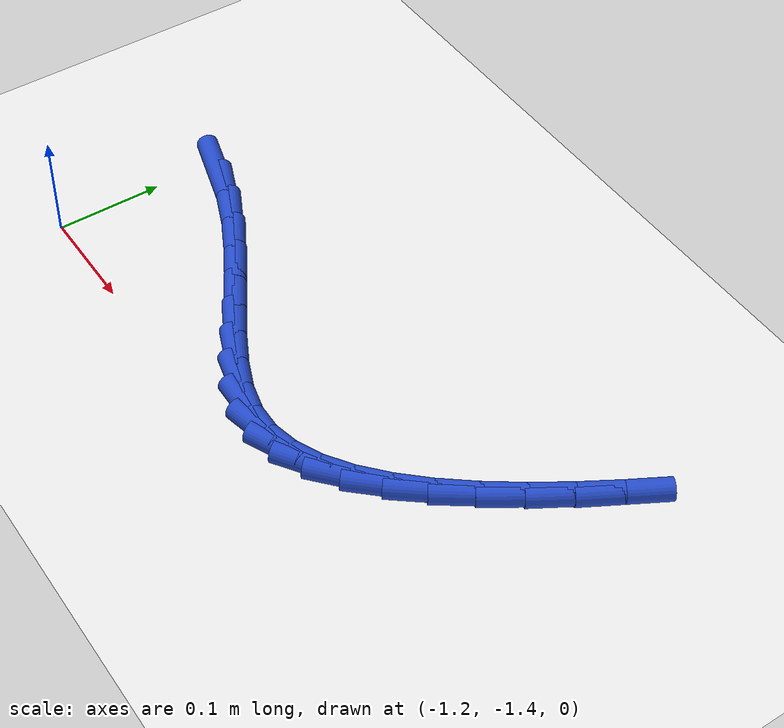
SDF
<sdf version="1.6">
 <world name="default">
  <model name="ground_plane">
   <static>1</static>
   <link name="link">
    <collision name="collision">
     <geometry><plane><normal>0 0 1</normal><size>100 100</size></plane></geometry>
     <surface><friction><ode><mu>100</mu><mu2>50</mu2></ode></friction></surface>
    </collision>
    <visual name="visual">
     <cast_shadows>0</cast_shadows>
     <geometry><plane><normal>0 0 1</normal><size>100 100</size></plane></geometry>
     <material>
      <script><uri>file://media/materials/scripts/gazebo.material</uri><name>Gazebo/WhiteGlow</name></script>
     </material>
    </visual>
   </link>
  </model>
  <model name="line">
   <link name="link_179">
    <pose>-1.1791638434591296 -1.2466586511138409 0.01 0 1.57 -0.28677213311311417</pose>
    <collision name="collision">
     <geometry><cylinder><radius>0.01</radius><length>0.08</length></cylinder></geometry>
    </collision>
    <visual name="visual">
     <material>
      <script><name>Gazebo/Blue</name><uri>file://media/materials/scripts/gazebo.material</uri></script>
     </material>
     <geometry><cylinder><radius>0.01</radius><length>0.08</length></cylinder></geometry>
    </visual>
   </link>
   <link name="link_180">
    <pose>-1.1440116622862213 -1.2570250591560603 0.01 0 1.57 -0.39635215390813605</pose>
    <collision name="collision">
     <geometry><cylinder><radius>0.01</radius><length>0.08</length></cylinder></geometry>
    </collision>
    <visual name="visual">
     <material>
      <script><name>Gazebo/Blue</name><uri>file://media/materials/scripts/gazebo.material</uri></script>
     </material>
     <geometry><cylinder><radius>0.01</radius><length>0.08</length></cylinder></geometry>
    </visual>
   </link>
   <link name="link_181">
    <pose>-1.1104053235081752 -1.2710893088309307 0.01 0 1.57 -0.4753566311824164</pose>
    <collision name="collision">
     <geometry><cylinder><radius>0.01</radius><length>0.08</length></cylinder></geometry>
    </collision>
    <visual name="visual">
     <material>
      <script><name>Gazebo/Blue</name><uri>file://media/materials/scripts/gazebo.material</uri></script>
     </material>
     <geometry><cylinder><radius>0.01</radius><length>0.08</length></cylinder></geometry>
    </visual>
   </link>
   <link name="link_182">
    <pose>-1.078220488179157 -1.2876555885705723 0.01 0 1.57 -0.5245571993979186</pose>
    <collision name="collision">
     <geometry><cylinder><radius>0.01</radius><length>0.08</length></cylinder></geometry>
    </collision>
    <visual name="visual">
     <material>
      <script><name>Gazebo/Blue</name><uri>file://media/materials/scripts/gazebo.material</uri></script>
     </material>
     <geometry><cylinder><radius>0.01</radius><length>0.08</length></cylinder></geometry>
    </visual>
   </link>
   <link name="link_183">
    <pose>-1.0473328173533318 -1.3055280868071053 0.01 0 1.57 -0.544221471075791</pose>
    <collision name="collision">
     <geometry><cylinder><radius>0.01</radius><length>0.08</length></cylinder></geometry>
    </collision>
    <visual name="visual">
     <material>
      <script><name>Gazebo/Blue</name><uri>file://media/materials/scripts/gazebo.material</uri></script>
     </material>
     <geometry><cylinder><radius>0.01</radius><length>0.08</length></cylinder></geometry>
    </visual>
   </link>
   <link name="link_184">
    <pose>-1.0176179720848646 -1.3235109919726504 0.01 0 1.57 -0.5326290183701429</pose>
    <collision name="collision">
     <geometry><cylinder><radius>0.01</radius><length>0.08</length></cylinder></geometry>
    </collision>
    <visual name="visual">
     <material>
      <script><name>Gazebo/Blue</name><uri>file://media/materials/scripts/gazebo.material</uri></script>
     </material>
     <geometry><cylinder><radius>0.01</radius><length>0.08</length></cylinder></geometry>
    </visual>
   </link>
   <link name="link_185">
    <pose>-0.9889516134279193 -1.3404084924993271 0.01 0 1.57 -0.48490464394390115</pose>
    <collision name="collision">
     <geometry><cylinder><radius>0.01</radius><length>0.08</length></cylinder></geometry>
    </collision>
    <visual name="visual">
     <material>
      <script><name>Gazebo/Blue</name><uri>file://media/materials/scripts/gazebo.material</uri></script>
     </material>
     <geometry><cylinder><radius>0.01</radius><length>0.08</length></cylinder></geometry>
    </visual>
   </link>
   <link name="link_186">
    <pose>-0.9612094024366633 -1.3550247768192554 0.01 0 1.57 -0.3920446390622317</pose>
    <collision name="collision">
     <geometry><cylinder><radius>0.01</radius><length>0.08</length></cylinder></geometry>
    </collision>
    <visual name="visual">
     <material>
      <script><name>Gazebo/Blue</name><uri>file://media/materials/scripts/gazebo.material</uri></script>
     </material>
     <geometry><cylinder><radius>0.01</radius><length>0.08</length></cylinder></geometry>
    </visual>
   </link>
   <link name="link_187">
    <pose>-0.9342670001652611 -1.3661640333645562 0.01 0 1.57 -0.24138100299221762</pose>
    <collision name="collision">
     <geometry><cylinder><radius>0.01</radius><length>0.08</length></cylinder></geometry>
    </collision>
    <visual name="visual">
     <material>
      <script><name>Gazebo/Blue</name><uri>file://media/materials/scripts/gazebo.material</uri></script>
     </material>
     <geometry><cylinder><radius>0.01</radius><length>0.08</length></cylinder></geometry>
    </visual>
   </link>
   <link name="link_188">
    <pose>-0.908000067667877 -1.3726304505673488 0.01 0 1.57 -0.0240213212134603</pose>
    <collision name="collision">
     <geometry><cylinder><radius>0.01</radius><length>0.08</length></cylinder></geometry>
    </collision>
    <visual name="visual">
     <material>
      <script><name>Gazebo/Blue</name><uri>file://media/materials/scripts/gazebo.material</uri></script>
     </material>
     <geometry><cylinder><radius>0.01</radius><length>0.08</length></cylinder></geometry>
    </visual>
   </link>
   <link name="link_189">
    <pose>-0.8822860600096872 -1.3732482538386417 0.01 0 1.57 0.2202931830912271</pose>
    <collision name="collision">
     <geometry><cylinder><radius>0.01</radius><length>0.08</length></cylinder></geometry>
    </collision>
    <visual name="visual">
     <material>
      <script><name>Gazebo/Blue</name><uri>file://media/materials/scripts/gazebo.material</uri></script>
     </material>
     <geometry><cylinder><radius>0.01</radius><length>0.08</length></cylinder></geometry>
    </visual>
   </link>
   <link name="link_190">
    <pose>-0.8570704906103008 -1.367601799827863 0.01 0 1.57 0.4309696509322049</pose>
    <collision name="collision">
     <geometry><cylinder><radius>0.01</radius><length>0.08</length></cylinder></geometry>
    </collision>
    <visual name="visual">
     <material>
      <script><name>Gazebo/Blue</name><uri>file://media/materials/scripts/gazebo.material</uri></script>
     </material>
     <geometry><cylinder><radius>0.01</radius><length>0.08</length></cylinder></geometry>
    </visual>
   </link>
   <link name="link_191">
    <pose>-0.8323863211304374 -1.3562521384995565 0.01 0 1.57 0.5980284092635182</pose>
    <collision name="collision">
     <geometry><cylinder><radius>0.01</radius><length>0.08</length></cylinder></geometry>
    </collision>
    <visual name="visual">
     <material>
      <script><name>Gazebo/Blue</name><uri>file://media/materials/scripts/gazebo.material</uri></script>
     </material>
     <geometry><cylinder><radius>0.01</radius><length>0.08</length></cylinder></geometry>
    </visual>
   </link>
   <link name="link_192">
    <pose>-0.8082722617729744 -1.3398245242279332 0.01 0 1.57 0.726327760804237</pose>
    <collision name="collision">
     <geometry><cylinder><radius>0.01</radius><length>0.08</length></cylinder></geometry>
    </collision>
    <visual name="visual">
     <material>
      <script><name>Gazebo/Blue</name><uri>file://media/materials/scripts/gazebo.material</uri></script>
     </material>
     <geometry><cylinder><radius>0.01</radius><length>0.08</length></cylinder></geometry>
    </visual>
   </link>
   <link name="link_193">
    <pose>-0.7847670227407902 -1.3189442113872036 0.01 0 1.57 0.8242733522779825</pose>
    <collision name="collision">
     <geometry><cylinder><radius>0.01</radius><length>0.08</length></cylinder></geometry>
    </collision>
    <visual name="visual">
     <material>
      <script><name>Gazebo/Blue</name><uri>file://media/materials/scripts/gazebo.material</uri></script>
     </material>
     <geometry><cylinder><radius>0.01</radius><length>0.08</length></cylinder></geometry>
    </visual>
   </link>
   <link name="link_194">
    <pose>-0.7619093142367621 -1.2942364543515787 0.01 0 1.57 0.8994836204667089</pose>
    <collision name="collision">
     <geometry><cylinder><radius>0.01</radius><length>0.08</length></cylinder></geometry>
    </collision>
    <visual name="visual">
     <material>
      <script><name>Gazebo/Blue</name><uri>file://media/materials/scripts/gazebo.material</uri></script>
     </material>
     <geometry><cylinder><radius>0.01</radius><length>0.08</length></cylinder></geometry>
    </visual>
   </link>
   <link name="link_195">
    <pose>-0.7397378464637675 -1.2663265074952692 0.01 0 1.57 0.9577472782646543</pose>
    <collision name="collision">
     <geometry><cylinder><radius>0.01</radius><length>0.08</length></cylinder></geometry>
    </collision>
    <visual name="visual">
     <material>
      <script><name>Gazebo/Blue</name><uri>file://media/materials/scripts/gazebo.material</uri></script>
     </material>
     <geometry><cylinder><radius>0.01</radius><length>0.08</length></cylinder></geometry>
    </visual>
   </link>
   <link name="link_196">
    <pose>-0.7182913296246841 -1.2358396251924855 0.01 0 1.57 1.0031869950352446</pose>
    <collision name="collision">
     <geometry><cylinder><radius>0.01</radius><length>0.08</length></cylinder></geometry>
    </collision>
    <visual name="visual">
     <material>
      <script><name>Gazebo/Blue</name><uri>file://media/materials/scripts/gazebo.material</uri></script>
     </material>
     <geometry><cylinder><radius>0.01</radius><length>0.08</length></cylinder></geometry>
    </visual>
   </link>
   <link name="link_197">
    <pose>-0.6976084739223892 -1.2034010618174382 0.01 0 1.57 1.0386603425712388</pose>
    <collision name="collision">
     <geometry><cylinder><radius>0.01</radius><length>0.08</length></cylinder></geometry>
    </collision>
    <visual name="visual">
     <material>
      <script><name>Gazebo/Blue</name><uri>file://media/materials/scripts/gazebo.material</uri></script>
     </material>
     <geometry><cylinder><radius>0.01</radius><length>0.08</length></cylinder></geometry>
    </visual>
   </link>
   <link name="link_198">
    <pose>-0.6777279895597607 -1.1696360717443381 0.01 0 1.57 1.066105821504009</pose>
    <collision name="collision">
     <geometry><cylinder><radius>0.01</radius><length>0.08</length></cylinder></geometry>
    </collision>
    <visual name="visual">
     <material>
      <script><name>Gazebo/Blue</name><uri>file://media/materials/scripts/gazebo.material</uri></script>
     </material>
     <geometry><cylinder><radius>0.01</radius><length>0.08</length></cylinder></geometry>
    </visual>
   </link>
  </model>
 </world>
</sdf>
